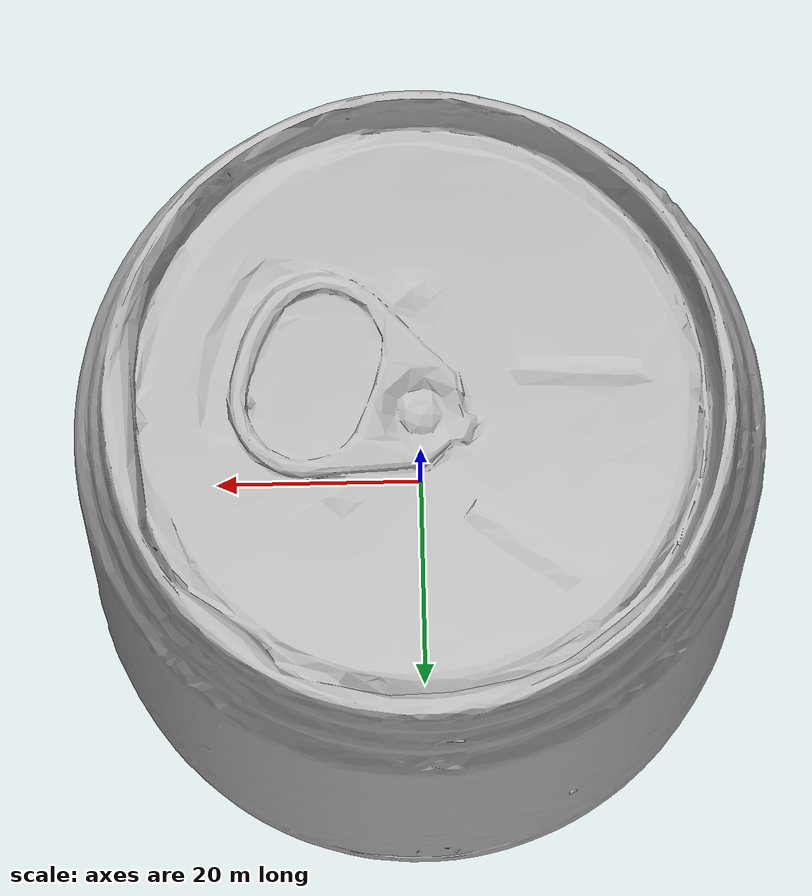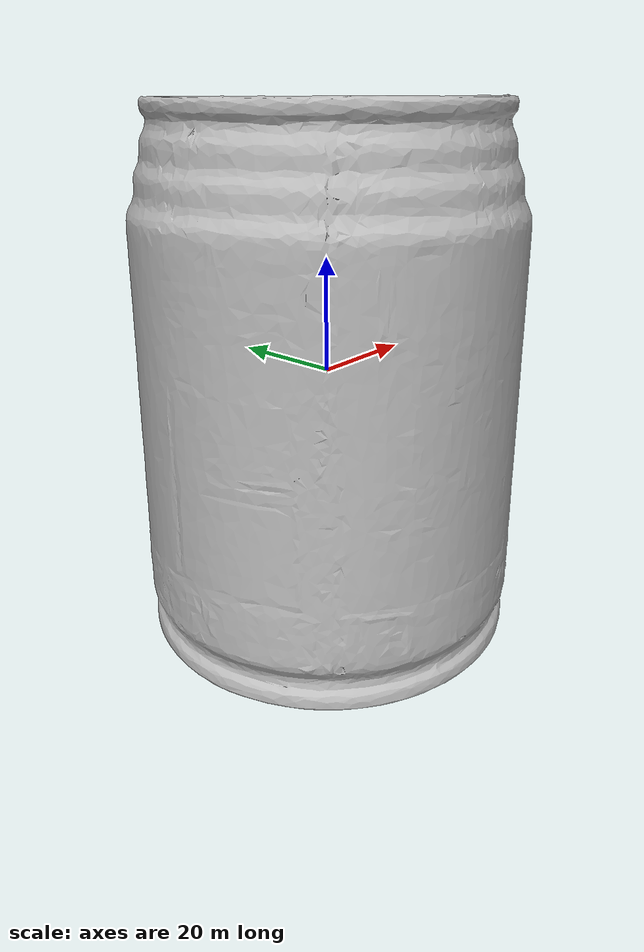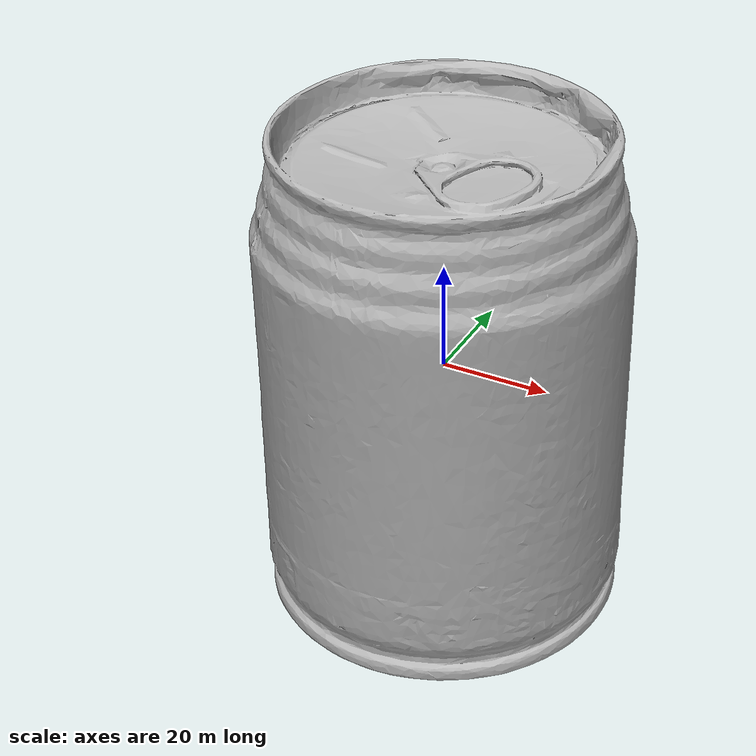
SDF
<sdf version="1.4">
 <world name="default">
  <light name="light1" type="point">
   <pose>0 0 1 0 0 0</pose>
   <diffuse>3 3 3 1</diffuse>
   <specular>3 3 3 1</specular>
  </light>
  <light name="light2" type="point">
   <pose>0 0.5 2 0 0 0</pose>
   <diffuse>1 1 1 1</diffuse>
   <specular>1 1 1 1</specular>
  </light>
  <light name="light3" type="point">
   <pose>0 0.5 2 0 0 0</pose>
   <diffuse>3 3 3 1</diffuse>
   <specular>3 3 3 1</specular>
  </light>
  <scene><ambient>0.7 0.7 0.7</ambient></scene>
  <model name="box1">
   <link name="link_box1">
    <collision name="default">
     <geometry>
      <mesh><uri>model://wooden_puzzle1/collision_meshes/collision.obj</uri><scale>1.0 1.0 1.0</scale></mesh>
     </geometry>
     <surface>
      <friction><ode><mu>0.5</mu><mu2>0.5</mu2></ode></friction>
      <contact><ode><max_vel>0</max_vel><min_depth>0.0001</min_depth><kp>1e8</kp></ode></contact>
     </surface>
    </collision>
    <visual name="default">
     <geometry>
      <mesh><uri>model://wooden_puzzle1/visual_meshes/visual.dae</uri><scale>1.0 1.0 1.0</scale></mesh>
     </geometry>
    </visual>
    <inertial>
     <mass>0.025116289034485817</mass>
     <pose>-0.00017350679263472557 7.972260937094688e-05 -9.191555000143126e-05 -0.07784885804399136 -0.2636065522190298 -0.5528757227143044</pose>
     <inertia>
      <ixx>4.7387575e-06</ixx>
      <iyy>4.647534e-06</iyy>
      <izz>4.7029785e-06</izz>
      <ixy>0</ixy>
      <ixz>0</ixz>
      <iyz>0</iyz>
     </inertia>
    </inertial>
   </link>
   <pose>0.1526242345571518 -0.20154188573360443 0.016801979392766953 0.010516667747713615 -0.009458958007624928 0.09964685098790914</pose>
  </model>
  <model name="box3">
   <link name="link_box3">
    <collision name="default">
     <geometry>
      <mesh><uri>model://wooden_puzzle2/collision_meshes/collision.obj</uri><scale>1.0 1.0 1.0</scale></mesh>
     </geometry>
     <surface>
      <friction><ode><mu>0.5</mu><mu2>0.5</mu2></ode></friction>
      <contact><ode><max_vel>0</max_vel><min_depth>0.0001</min_depth><kp>1e8</kp></ode></contact>
     </surface>
    </collision>
    <visual name="default">
     <geometry>
      <mesh><uri>model://wooden_puzzle2/visual_meshes/visual.dae</uri><scale>1.0 1.0 1.0</scale></mesh>
     </geometry>
    </visual>
    <inertial>
     <mass>0.025376593694090843</mass>
     <pose>2.7402536943554878e-05 4.997663199901581e-05 6.587122334167361e-05 -0.1920355258808483 0.6112750807505014 -0.6338716229052327</pose>
     <inertia>
      <ixx>4.7172375e-06</ixx>
      <iyy>4.8472266e-06</iyy>
      <izz>4.778271e-06</izz>
      <ixy>0</ixy>
      <ixz>0</ixz>
      <iyz>0</iyz>
     </inertia>
    </inertial>
   </link>
   <pose>-0.08003929257392883 -0.11551139503717422 0.01691773533821106 0.02084837967016166 0.0007214611039589803 -0.20003300760698775</pose>
  </model>
  <model name="can1">
   <link name="link_can1">
    <collision name="default">
     <geometry>
      <mesh><uri>model://redbull/collision_meshes/collision.obj</uri><scale>1.0 1.0 1.0</scale></mesh>
     </geometry>
     <surface>
      <friction><ode><mu>0.5</mu><mu2>0.5</mu2></ode></friction>
      <contact><ode><max_vel>0</max_vel><min_depth>0.0001</min_depth><kp>1e8</kp></ode></contact>
     </surface>
    </collision>
    <visual name="default">
     <geometry>
      <mesh><uri>model://redbull/visual_meshes/visual.dae</uri><scale>1.0 1.0 1.0</scale></mesh>
     </geometry>
    </visual>
    <inertial>
     <mass>0.2544018626213074</mass>
     <pose>-2.2126756448415108e-05 -0.0001265947794308886 -0.0006860987632535398 0.0011376600102847077 -0.01080087162846833 0.5858227764205248</pose>
     <inertia>
      <ixx>0.00023919248</ixx>
      <iyy>0.00023939437</iyy>
      <izz>0.00014194298</izz>
      <ixy>0</ixy>
      <ixz>0</ixz>
      <iyz>0</iyz>
     </inertia>
    </inertial>
   </link>
   <pose>0.05087657272815704 -0.20230869948863983 0.04638563096523285 -0.010488462685476138 0.00726114193482242 1.6293442110775596</pose>
  </model>
  <model name="can2">
   <link name="link_can2">
    <collision name="default">
     <geometry>
      <mesh><uri>model://pepsi/collision_meshes/collision.obj</uri><scale>1.0 1.0 1.0</scale></mesh>
     </geometry>
     <surface>
      <friction><ode><mu>0.5</mu><mu2>0.5</mu2></ode></friction>
      <contact><ode><max_vel>0</max_vel><min_depth>0.0001</min_depth><kp>1e8</kp></ode></contact>
     </surface>
    </collision>
    <visual name="default">
     <geometry><mesh><uri>model://pepsi/visual_meshes/visual.dae</uri><scale>1.0 1.0 1.0</scale></mesh></geometry>
    </visual>
    <inertial>
     <mass>0.4552207291126251</mass>
     <pose>-7.5590331107378e-05 2.99312814604491e-05 -0.0003384356095921248 -0.0010679690801074441 -0.0021734768369219134 0.5674650232372158</pose>
     <inertia>
      <ixx>0.0009068869</ixx>
      <iyy>0.0009062263</iyy>
      <izz>0.00019301806</izz>
      <ixy>0</ixy>
      <ixz>0</ixz>
      <iyz>0</iyz>
     </inertia>
    </inertial>
   </link>
   <pose>0.2703353762626648 -0.014606660231947899 0.0744963139295578 -1.8021641548288234e-05 2.16304509870527e-06 -2.848701355985721</pose>
  </model>
  <physics type="ode">
   <max_contacts>50</max_contacts>
   <ode>
    <solver><type>quick</type><iters>75</iters></solver>
    <constraints>
     <contact_max_correcting_vel>0</contact_max_correcting_vel>
     <contact_surface_layer>0</contact_surface_layer>
    </constraints>
   </ode>
  </physics>
 </world>
</sdf>
